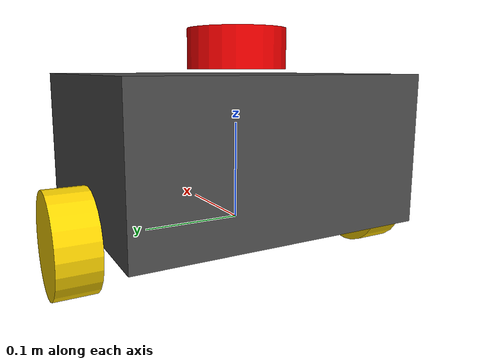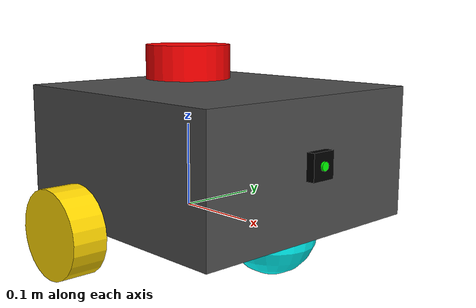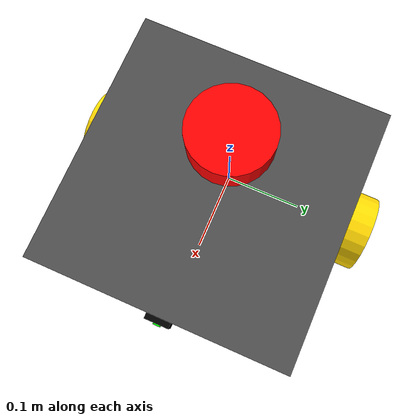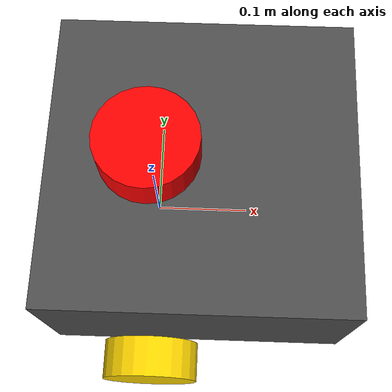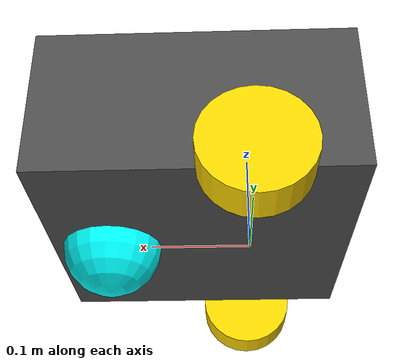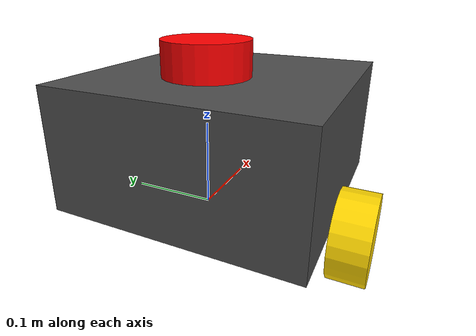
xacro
<?xml version="1.0"?>
<robot xmlns:xacro="http://www.ros.org/wiki/xacro"  name="robot">

    <xacro:arg name = "use_ros2_control" default = "true"/>
    <!-- Example link -->
    <xacro:include filename="robot_core.xacro"/>
    <xacro:include filename="lidar.xacro"/>
    <xacro:include filename="camera.xacro"/>
    <!-- Switch between ros2_control and Gazebo integrated diff-drive control -->
    <xacro:if value="$(arg use_ros2_control)">
        <xacro:include filename="ros2_control.xacro" />
    </xacro:if>
    <xacro:unless value="$(arg use_ros2_control)">
        <xacro:include filename="gazebo_control.xacro" />
    </xacro:unless>

</robot>

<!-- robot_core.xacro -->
<robot xmlns:xacro="http://www.ros.org/wiki/xacro"  name="robot">

    <xacro:include filename="inertial_macros.xacro"/>
    <xacro:include filename="colors.xacro"/>

    <xacro:property name="chassis_length" value="0.3"/>
    <xacro:property name="chassis_width" value="0.3"/>
    <xacro:property name="chassis_height" value="0.15"/>
    <xacro:property name="chassis_mass" value="0.5"/>
    <xacro:property name="wheel_radius" value="0.05"/>
    <xacro:property name="wheel_thickness" value="0.04"/>
    <xacro:property name="wheel_mass" value="0.1"/>
    <xacro:property name="wheel_offset_y" value="0.175"/>
    <xacro:property name="caster_wheel_radius" value="0.05"/>
    <xacro:property name="caster_wheel_mass" value="0.1"/>
    <xacro:property name="caster_wheel_offset_x" value="0.24"/>

    <link name="base_link">
    </link>

    <joint name="chassis_joint" type="fixed">
        <parent link="base_link"/>
        <child link="chassis"/>
        <origin xyz="-0.1 0 0"/>
    </joint>

        <!-- BASE_FOOTPRINT -->

    <joint name="base_footprint_joint" type="fixed">
        <parent link="base_link"/>
        <child link="base_footprint"/>
        <origin xyz="0 0 0" rpy="0 0 0"/>
    </joint>

    <link name="base_footprint">
    </link>

    <link name="chassis">
        <visual>
            <origin xyz="${chassis_length/2} 0 ${chassis_height/2}" rpy="0 0 0"/>
            <geometry>
                <box size="${chassis_length} ${chassis_width} ${chassis_height}"/>
            </geometry>
            <material name="metal_gray"/>
        </visual>
        <collision>
            <origin xyz="${chassis_length/2} 0 ${chassis_height/2}" rpy="0 0 0"/>
            <geometry>
                <box size="${chassis_length} ${chassis_width} ${chassis_height}"/>
            </geometry>
        </collision>
        <xacro:inertial_box mass="${chassis_mass}" x="${chassis_length}" y="${chassis_width}" z="${chassis_height}">
            <origin xyz="${chassis_length/2} 0 ${chassis_height/2}" rpy="0 0 0"/>
        </xacro:inertial_box>
    </link>

    <joint name="left_wheel_joint" type="continuous">
        <parent link="base_link"/>
        <child link="left_wheel"/>
        <origin xyz="0 ${wheel_offset_y} 0" rpy="-${pi/2} 0 0"/>
        <axis xyz="0 0 1"/>
    </joint>

    <link name="left_wheel">
        <visual>
            <geometry>
                <cylinder length="${wheel_thickness}" radius="${wheel_radius}" />
            </geometry>
            <material name="gold"/>
        </visual>
        <collision>
            <geometry>
                <cylinder length="${wheel_thickness}" radius="${wheel_radius}" />
            </geometry>
        </collision>
        <xacro:inertial_cylinder mass="${wheel_mass}" length="${wheel_thickness}" radius="${wheel_radius}">
            <origin xyz="0 0 0" rpy="0 0 0"/>
        </xacro:inertial_cylinder>
    </link>

    <joint name="right_wheel_joint" type="continuous">
        <parent link="base_link"/>
        <child link="right_wheel"/>
        <origin xyz="0 -${wheel_offset_y} 0" rpy="${pi/2} 0 0"/>
        <axis xyz="0 0 -1"/>
    </joint>

    <link name="right_wheel">
        <visual>
            <geometry>
                <cylinder length="${wheel_thickness}" radius="${wheel_radius}" />
            </geometry>
            <material name="gold"/>
        </visual>
        <collision>
            <geometry>
                <cylinder length="${wheel_thickness}" radius="${wheel_radius}" />
            </geometry>
        </collision>
        <xacro:inertial_cylinder mass="${wheel_mass}" length="${wheel_thickness}" radius="${wheel_radius}">
            <origin xyz="0 0 0" rpy="0 0 0"/>
        </xacro:inertial_cylinder>
    </link>

    <joint name="caster_wheel_joint" type="fixed">
        <parent link="chassis"/>
        <child link="caster_wheel"/>
        <origin xyz="${caster_wheel_offset_x} 0 0" rpy="0 0 0"/>
    </joint>

    <link name="caster_wheel">
        <visual>
            <geometry>
                <sphere radius="${caster_wheel_radius}" />
            </geometry>
            <material name="cyan"/>
        </visual>
        <collision>
            <geometry>
                <sphere radius="${caster_wheel_radius}" />
            </geometry>
        </collision>
        <xacro:inertial_sphere mass="${caster_wheel_mass}" radius="${caster_wheel_radius}">
            <origin xyz="0 0 0" rpy="0 0 0"/>
        </xacro:inertial_sphere>
    </link>

    <gazebo reference="caster_wheel">
        <mu1 value="0.001"/>
        <mu2 value="0.001"/>
    </gazebo>

</robot>

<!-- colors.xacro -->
<robot xmlns:xacro="http://www.ros.org/wiki/xacro">

    <material name="cyan">
        <color rgba="0 1 1 1"/>
    </material>

    <material name="metal_gray">
        <color rgba="0.3 0.3 0.3 1"/>
    </material>

    <material name="green">
        <color rgba="0 1 0 1"/>
    </material>

    <material name="gold">
        <color rgba="1 0.84 0 1"/>
    </material>

    <material name="red">
        <color rgba="1 0 0 1"/>
    </material>

    <material name="black">
        <color rgba="0 0 0 1"/>
    </material>

</robot>

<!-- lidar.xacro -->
<robot xmlns:xacro="http://www.ros.org/wiki/xacro" >

    <joint name="laser_joint" type="fixed">
        <parent link="chassis"/>
        <child link="laser_frame"/>
        <origin xyz="0.1 0 0.175" rpy="0 0 0"/>
    </joint>

    <link name="laser_frame">
        <visual>
            <geometry>
                <cylinder radius="0.05" length="0.04"/>
            </geometry>
            <material name="red"/>
        </visual>
        <collision>
            <geometry>
                <cylinder radius="0.05" length="0.04"/>
            </geometry>
        </collision>
        <xacro:inertial_cylinder mass="0.1" length="0.04" radius="0.05">
            <origin xyz="0 0 0" rpy="0 0 0"/>
        </xacro:inertial_cylinder>
    </link>

    <gazebo reference="laser_frame">
        <material>Gazebo/Red</material>

        <sensor name="laser" type="gpu_lidar">
            <always_on>true</always_on>
            <pose> 0 0 0 0 0 0 </pose>
            <visualize>true</visualize>
            <update_rate>10</update_rate>
            <lidar>
                <scan>
                    <horizontal>
                        <samples>360</samples>
                        <min_angle>-3.14</min_angle>
                        <max_angle>3.14</max_angle>
                    </horizontal>
                </scan>
                <range>
                    <min>0.0</min>
                    <max>25</max>
                </range>
            </lidar>
            <topic>scan</topic>
            <gz_frame_id>laser_frame</gz_frame_id>
        </sensor>
    </gazebo>

</robot>

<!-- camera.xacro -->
<robot xmlns:xacro="http://www.ros.org/wiki/xacro" >

    <joint name="camera_joint" type="fixed">
        <parent link="chassis"/>
        <child link="camera_link"/>
        <origin xyz="0.305 0 0.08" rpy="0 0 0"/>
    </joint>

    <link name="camera_link">
        <visual>
            <geometry>
                <box size="0.010 0.03 0.03"/>
            </geometry>
            <material name="black"/>
        </visual>
        <visual>
            <origin xyz="0.005 0 0" rpy="0 ${pi/2} 0"/>
            <geometry>
                <cylinder radius="0.005" length="0.005"/>
            </geometry>
            <material name="green"/>
        </visual>
    </link>

    <joint name="camera_optical_joint" type="fixed">
        <parent link="camera_link"/>
        <child link="camera_link_optical"/>
        <origin xyz="0 0 0" rpy="${-pi/2} 0 ${-pi/2}"/>
    </joint>

    <link name="camera_link_optical"></link>

    <gazebo reference="camera_link">
        <material>Gazebo/black</material>

        <sensor name = "camera" type = "camera">
            <always_on>true</always_on>
            <pose> 0 0 0 0 0 0 </pose>
            <visualize>true</visualize>
            <update_rate>10</update_rate>
            <camera>
                <camera_info_topic>camera/camera_info</camera_info_topic>
                <horizontal_fov>1.089</horizontal_fov>
                <image>
                    <format>R8G8B8</format>
                    <width>640</width>
                    <height>480</height>
                </image>
                <clip>
                    <near>0.05</near>
                    <far>8.0</far>
                </clip>
            </camera>

            <topic>camera/image_raw</topic>
            <get_frame_id>camera_link_optical</get_frame_id>

        </sensor>
    </gazebo>

</robot>
